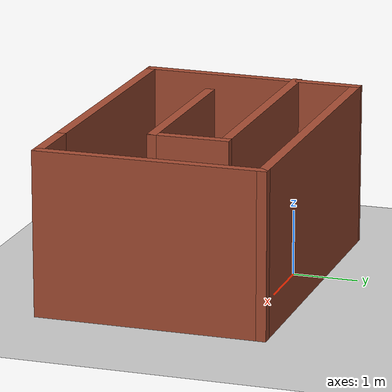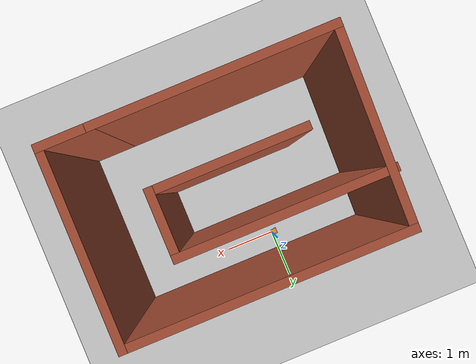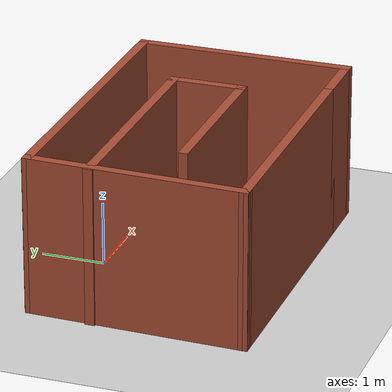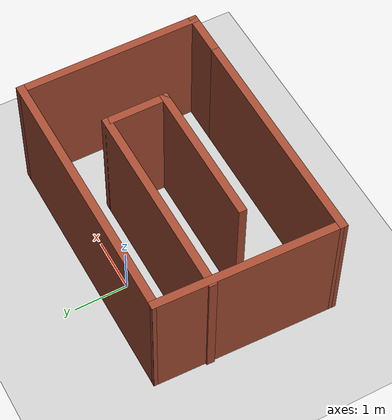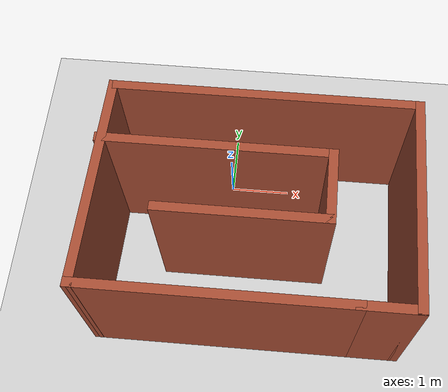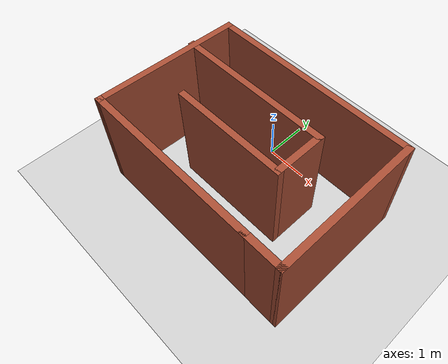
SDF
<sdf version="1.6">
 <world name="default">
  <light name="sun" type="directional">
   <pose>0 0 10 0 -0 0</pose>
   <diffuse>0.8 0.8 0.8 1</diffuse>
   <specular>0.2 0.2 0.2 1</specular>
   <attenuation>
    <range>1000</range>
    <constant>0.9</constant>
    <linear>0.01</linear>
    <quadratic>0.001</quadratic>
   </attenuation>
   <direction>-0.5 0.1 -0.9</direction>
  </light>
  <model name="ground_plane">
   <static>1</static>
   <link name="link">
    <collision name="collision">
     <geometry><plane><normal>0 0 1</normal><size>100 100</size></plane></geometry>
     <surface><friction><ode><mu>100</mu><mu2>50</mu2></ode></friction></surface>
    </collision>
    <visual name="visual">
     <cast_shadows>0</cast_shadows>
     <geometry><plane><normal>0 0 1</normal><size>100 100</size></plane></geometry>
     <material>
      <script><uri>file://media/materials/scripts/gazebo.material</uri><name>Gazebo/Grey</name></script>
     </material>
    </visual>
   </link>
  </model>
  <gravity>0 0 -9.8</gravity>
  <magnetic_field>6e-06 2.3e-05 -4.2e-05</magnetic_field>
  <atmosphere type="adiabatic"/>
  <physics name="default_physics" default="0" type="ode">
   <max_step_size>0.001</max_step_size>
   <real_time_factor>1</real_time_factor>
   <real_time_update_rate>1000</real_time_update_rate>
  </physics>
  <scene><ambient>0.4 0.4 0.4 1</ambient><background>0.7 0.7 0.7 1</background><shadows>1</shadows></scene>
  <spherical_coordinates>
   <surface_model>EARTH_WGS84</surface_model>
   <latitude_deg>0</latitude_deg>
   <longitude_deg>0</longitude_deg>
   <elevation>0</elevation>
   <heading_deg>0</heading_deg>
  </spherical_coordinates>
  <model name="differential_drive">
   <link name="base_link">
    <inertial>
     <pose>-0.009136 0 0.009707 0 -0 0</pose>
     <mass>0.275168</mass>
     <inertia>
      <ixx>0.000131828</ixx>
      <ixy>3.01015e-20</ixy>
      <ixz>-3.06731e-05</ixz>
      <iyy>0.000293758</iyy>
      <iyz>-7.91394e-23</iyz>
      <izz>0.00035803</izz>
     </inertia>
    </inertial>
    <collision name="base_link_collision">
     <geometry>
      <mesh>
       <scale>0.001 0.001 0.001</scale>
       <uri>/home/gaurav/SLAM/src/differential_drive_description/meshes/base_link.stl</uri>
      </mesh>
     </geometry>
     <surface><friction><ode><mu>0.2</mu><mu2>0.2</mu2></ode></friction></surface>
    </collision>
    <collision name="base_link_fixed_joint_lump__caster_wheel_1_collision_1">
     <geometry>
      <mesh>
       <scale>0.001 0.001 0.001</scale>
       <uri>/home/gaurav/SLAM/src/differential_drive_description/meshes/caster_wheel_1.stl</uri>
      </mesh>
     </geometry>
     <surface><friction><ode><mu>100</mu><mu2>50</mu2></ode></friction></surface>
    </collision>
    <collision name="base_link_fixed_joint_lump__depth_camera_1_collision_2">
     <geometry>
      <mesh>
       <scale>0.001 0.001 0.001</scale>
       <uri>/home/gaurav/SLAM/src/differential_drive_description/meshes/depth_camera_1.stl</uri>
      </mesh>
     </geometry>
     <surface><friction><ode><mu>0.2</mu><mu2>0.2</mu2></ode></friction></surface>
    </collision>
    <visual name="base_link_visual">
     <geometry>
      <mesh>
       <scale>0.001 0.001 0.001</scale>
       <uri>/home/gaurav/SLAM/src/differential_drive_description/meshes/base_link.stl</uri>
      </mesh>
     </geometry>
     <material>
      <script><name>Gazebo/Orange</name><uri>file://media/materials/scripts/gazebo.material</uri></script>
     </material>
    </visual>
    <visual name="base_link_fixed_joint_lump__caster_wheel_1_visual_1">
     <geometry>
      <mesh>
       <scale>0.001 0.001 0.001</scale>
       <uri>/home/gaurav/SLAM/src/differential_drive_description/meshes/caster_wheel_1.stl</uri>
      </mesh>
     </geometry>
     <material>
      <script><name>Gazebo/Grey</name><uri>file://media/materials/scripts/gazebo.material</uri></script>
     </material>
    </visual>
    <visual name="base_link_fixed_joint_lump__depth_camera_1_visual_2">
     <geometry>
      <mesh>
       <scale>0.001 0.001 0.001</scale>
       <uri>/home/gaurav/SLAM/src/differential_drive_description/meshes/depth_camera_1.stl</uri>
      </mesh>
     </geometry>
     <material>
      <script><name>Gazebo/Blue</name><uri>file://media/materials/scripts/gazebo.material</uri></script>
     </material>
    </visual>
    <self_collide>1</self_collide>
    <sensor name="depth_camera" type="depth">
     <update_rate>20</update_rate>
     <camera name="__default__">
      <horizontal_fov>1.0472</horizontal_fov>
      <image><width>640</width><height>480</height><format>R8G8B8</format></image>
      <clip><near>0.05</near><far>3</far></clip>
     </camera>
     <plugin name="depth_camera_1_controller" filename="libgazebo_ros_openni_kinect.so">
      <baseline>0.2</baseline>
      <alwaysOn>1</alwaysOn>
      <updateRate>0.0</updateRate>
      <cameraName>depth_ir</cameraName>
      <imageTopicName>/depth/color/image_raw</imageTopicName>
      <cameraInfoTopicName>/depth/color/camera_info</cameraInfoTopicName>
      <depthImageTopicName>/depth/depth/image_raw</depthImageTopicName>
      <depthImageCameraInfoTopicName>/depth/depth/camera_info</depthImageCameraInfoTopicName>
      <pointCloudTopicName>/depth/depth/points</pointCloudTopicName>
      <frameName>depth_frame</frameName>
      <pointCloudCutoff>0.5</pointCloudCutoff>
      <pointCloudCutoffMax>3.0</pointCloudCutoffMax>
      <distortionK1>0.00000001</distortionK1>
      <distortionK2>0.00000001</distortionK2>
      <distortionK3>0.00000001</distortionK3>
      <distortionT1>0.00000001</distortionT1>
      <distortionT2>0.00000001</distortionT2>
      <CxPrime>0</CxPrime>
      <Cx>0</Cx>
      <Cy>0</Cy>
      <focalLength>0</focalLength>
      <hackBaseline>0</hackBaseline>
      <robotNamespace>/</robotNamespace>
     </plugin>
     <pose>0 0 0.01 0 -0 0</pose>
    </sensor>
   </link>
   <link name="right_wheel_1">
    <pose>-0.08 -0.052 0.005 0 -0 0</pose>
    <inertial>
     <pose>-0 0.0075 0 0 -0 0</pose>
     <mass>0.0980375</mass>
     <inertia><ixx>1.4e-05</ixx><ixy>0</ixy><ixz>0</ixz><iyy>2.3e-05</iyy><iyz>-0</iyz><izz>1.4e-05</izz></inertia>
    </inertial>
    <collision name="right_wheel_1_collision">
     <pose>0.08 0.052 -0.005 0 -0 0</pose>
     <geometry>
      <mesh>
       <scale>0.001 0.001 0.001</scale>
       <uri>/home/gaurav/SLAM/src/differential_drive_description/meshes/right_wheel_1.stl</uri>
      </mesh>
     </geometry>
     <surface>
      <contact><ode><kp>1e+06</kp><kd>100</kd></ode></contact>
      <friction><ode><mu>100</mu><mu2>50</mu2></ode></friction>
     </surface>
    </collision>
    <visual name="right_wheel_1_visual">
     <pose>0.08 0.052 -0.005 0 -0 0</pose>
     <geometry>
      <mesh>
       <scale>0.001 0.001 0.001</scale>
       <uri>/home/gaurav/SLAM/src/differential_drive_description/meshes/right_wheel_1.stl</uri>
      </mesh>
     </geometry>
     <material>
      <script><name>Gazebo/White</name><uri>file://media/materials/scripts/gazebo.material</uri></script>
     </material>
    </visual>
    <self_collide>1</self_collide>
   </link>
   <joint name="Rev10" type="revolute">
    <child>right_wheel_1</child>
    <parent>base_link</parent>
    <axis>
     <xyz>0 1 0</xyz>
     <limit><lower>-1e+16</lower><upper>1e+16</upper></limit>
     <dynamics><spring_reference>0</spring_reference><spring_stiffness>0</spring_stiffness></dynamics>
     <use_parent_model_frame>1</use_parent_model_frame>
    </axis>
   </joint>
   <link name="left_wheel_1">
    <pose>-0.08 0.052 0.005 0 -0 0</pose>
    <inertial>
     <pose>-0 -0.0075 0 0 -0 0</pose>
     <mass>0.0980375</mass>
     <inertia>
      <ixx>1.4e-05</ixx>
      <ixy>0</ixy>
      <ixz>-0</ixz>
      <iyy>2.3e-05</iyy>
      <iyz>-0</iyz>
      <izz>1.4e-05</izz>
     </inertia>
    </inertial>
    <collision name="left_wheel_1_collision">
     <pose>0.08 -0.052 -0.005 0 -0 0</pose>
     <geometry>
      <mesh>
       <scale>0.001 0.001 0.001</scale>
       <uri>/home/gaurav/SLAM/src/differential_drive_description/meshes/left_wheel_1.stl</uri>
      </mesh>
     </geometry>
     <surface>
      <contact><ode><kp>1e+06</kp><kd>100</kd></ode></contact>
      <friction><ode><mu>100</mu><mu2>50</mu2></ode></friction>
     </surface>
    </collision>
    <visual name="left_wheel_1_visual">
     <pose>0.08 -0.052 -0.005 0 -0 0</pose>
     <geometry>
      <mesh>
       <scale>0.001 0.001 0.001</scale>
       <uri>/home/gaurav/SLAM/src/differential_drive_description/meshes/left_wheel_1.stl</uri>
      </mesh>
     </geometry>
     <material>
      <script><name>Gazebo/White</name><uri>file://media/materials/scripts/gazebo.material</uri></script>
     </material>
    </visual>
    <self_collide>1</self_collide>
   </link>
   <joint name="Rev9" type="revolute">
    <child>left_wheel_1</child>
    <parent>base_link</parent>
    <axis>
     <xyz>0 1 0</xyz>
     <limit><lower>-1e+16</lower><upper>1e+16</upper></limit>
     <dynamics><spring_reference>0</spring_reference><spring_stiffness>0</spring_stiffness></dynamics>
     <use_parent_model_frame>1</use_parent_model_frame>
    </axis>
   </joint>
   <plugin name="control" filename="libgazebo_ros_control.so"><robotNamespace>/</robotNamespace></plugin>
   <plugin name="gazebo_ros_controller" filename="libgazebo_ros_controller.so">
    <robotNamespace>/</robotNamespace>
   </plugin>
   <static>0</static>
   <plugin name="differential_drive_controller" filename="libgazebo_ros_diff_drive.so">
    <alwaysOn>0</alwaysOn>
    <legacyMode>0</legacyMode>
    <updateRate>50</updateRate>
    <leftJoint>Rev9</leftJoint>
    <rightJoint>Rev10</rightJoint>
    <wheelSeparation>1</wheelSeparation>
    <wheelDiameter>0.3</wheelDiameter>
    <torque>20</torque>
    <commandTopic>/diff_drive/cmd_vel</commandTopic>
    <odometryTopic>/diff_drive/odom</odometryTopic>
    <odometryFrame>odom</odometryFrame>
    <robotBaseFrame>base_link</robotBaseFrame>
    <robotNamespace>/</robotNamespace>
   </plugin>
  </model>
  <model name="demo_world">
   <pose>0.483585 -1.25341 0 0 -0 0</pose>
   <link name="Wall_0">
    <collision name="Wall_0_Collision">
     <geometry><box><size>4.25 0.15 2.5</size></box></geometry>
     <pose>0 0 1.25 0 -0 0</pose>
    </collision>
    <visual name="Wall_0_Visual">
     <pose>0 0 1.25 0 -0 0</pose>
     <geometry><box><size>4.25 0.15 2.5</size></box></geometry>
     <material>
      <script><uri>file://media/materials/scripts/gazebo.material</uri><name>Gazebo/Bricks</name></script>
      <ambient>1 1 1 1</ambient>
     </material>
     <meta><layer>0</layer></meta>
    </visual>
    <pose>-0.423898 -1.675 0 0 -0 0</pose>
   </link>
   <link name="Wall_1">
    <collision name="Wall_1_Collision">
     <geometry><box><size>1 0.15 2.5</size></box></geometry>
     <pose>0 0 1.25 0 -0 0</pose>
    </collision>
    <visual name="Wall_1_Visual">
     <pose>0 0 1.25 0 -0 0</pose>
     <geometry><box><size>1 0.15 2.5</size></box></geometry>
     <material>
      <script><uri>file://media/materials/scripts/gazebo.material</uri><name>Gazebo/Bricks</name></script>
      <ambient>1 1 1 1</ambient>
     </material>
     <meta><layer>0</layer></meta>
    </visual>
    <pose>2.0511 -1.675 0 0 -0 0</pose>
   </link>
   <link name="Wall_2">
    <collision name="Wall_2_Collision">
     <geometry><box><size>3.5 0.15 2.5</size></box></geometry>
     <pose>0 0 1.25 0 -0 0</pose>
    </collision>
    <visual name="Wall_2_Visual">
     <pose>0 0 1.25 0 -0 0</pose>
     <geometry><box><size>3.5 0.15 2.5</size></box></geometry>
     <material>
      <script><uri>file://media/materials/scripts/gazebo.material</uri><name>Gazebo/Bricks</name></script>
      <ambient>1 1 1 1</ambient>
     </material>
     <meta><layer>0</layer></meta>
    </visual>
    <pose>2.4761 -0 0 0 -0 1.5708</pose>
   </link>
   <link name="Wall_3">
    <collision name="Wall_3_Collision">
     <geometry><box><size>5 0.15 2.5</size></box></geometry>
     <pose>0 0 1.25 0 -0 0</pose>
    </collision>
    <visual name="Wall_3_Visual">
     <pose>0 0 1.25 0 -0 0</pose>
     <geometry><box><size>5 0.15 2.5</size></box></geometry>
     <material>
      <script><uri>file://media/materials/scripts/gazebo.material</uri><name>Gazebo/Bricks</name></script>
      <ambient>1 1 1 1</ambient>
     </material>
     <meta><layer>0</layer></meta>
    </visual>
    <pose>0.051102 1.675 0 0 -0 3.14159</pose>
   </link>
   <link name="Wall_4">
    <collision name="Wall_4_Collision">
     <geometry><box><size>3.50149 0.15 2.5</size></box></geometry>
     <pose>0 0 1.25 0 -0 0</pose>
    </collision>
    <visual name="Wall_4_Visual">
     <pose>0 0 1.25 0 -0 0</pose>
     <geometry><box><size>3.50149 0.15 2.5</size></box></geometry>
     <material>
      <script><uri>file://media/materials/scripts/gazebo.material</uri><name>Gazebo/Bricks</name></script>
      <ambient>1 1 1 1</ambient>
     </material>
     <meta><layer>0</layer></meta>
    </visual>
    <pose>-2.4239 -0 0 0 -0 -1.60064</pose>
   </link>
   <link name="Wall_6">
    <collision name="Wall_6_Collision">
     <geometry><box><size>3.75 0.15 2.5</size></box></geometry>
     <pose>0 0 1.25 0 -0 0</pose>
    </collision>
    <visual name="Wall_6_Visual">
     <pose>0 0 1.25 0 -0 0</pose>
     <geometry><box><size>3.75 0.15 2.5</size></box></geometry>
     <material>
      <script><uri>file://media/materials/scripts/gazebo.material</uri><name>Gazebo/Bricks</name></script>
      <ambient>1 1 1 1</ambient>
     </material>
     <meta><layer>0</layer></meta>
    </visual>
    <pose>-0.63814 0.69995 0 0 -0 0</pose>
   </link>
   <link name="Wall_7">
    <collision name="Wall_7_Collision">
     <geometry><box><size>1.25 0.15 2.5</size></box></geometry>
     <pose>0 0 1.25 0 -0 0</pose>
    </collision>
    <visual name="Wall_7_Visual">
     <pose>0 0 1.25 0 -0 0</pose>
     <geometry><box><size>1.25 0.15 2.5</size></box></geometry>
     <material>
      <script><uri>file://media/materials/scripts/gazebo.material</uri><name>Gazebo/Bricks</name></script>
      <ambient>1 1 1 1</ambient>
     </material>
     <meta><layer>0</layer></meta>
    </visual>
    <pose>1.16186 0.14995 0 0 -0 -1.5708</pose>
   </link>
   <link name="Wall_8">
    <collision name="Wall_8_Collision">
     <geometry><box><size>2.75 0.15 2.5</size></box></geometry>
     <pose>0 0 1.25 0 -0 0</pose>
    </collision>
    <visual name="Wall_8_Visual">
     <pose>0 0 1.25 0 -0 0</pose>
     <geometry><box><size>2.75 0.15 2.5</size></box></geometry>
     <material>
      <script><uri>file://media/materials/scripts/gazebo.material</uri><name>Gazebo/Bricks</name></script>
      <ambient>1 1 1 1</ambient>
     </material>
     <meta><layer>0</layer></meta>
    </visual>
    <pose>-0.13814 -0.40005 0 0 -0 3.14159</pose>
   </link>
   <static>1</static>
  </model>
 </world>
</sdf>
